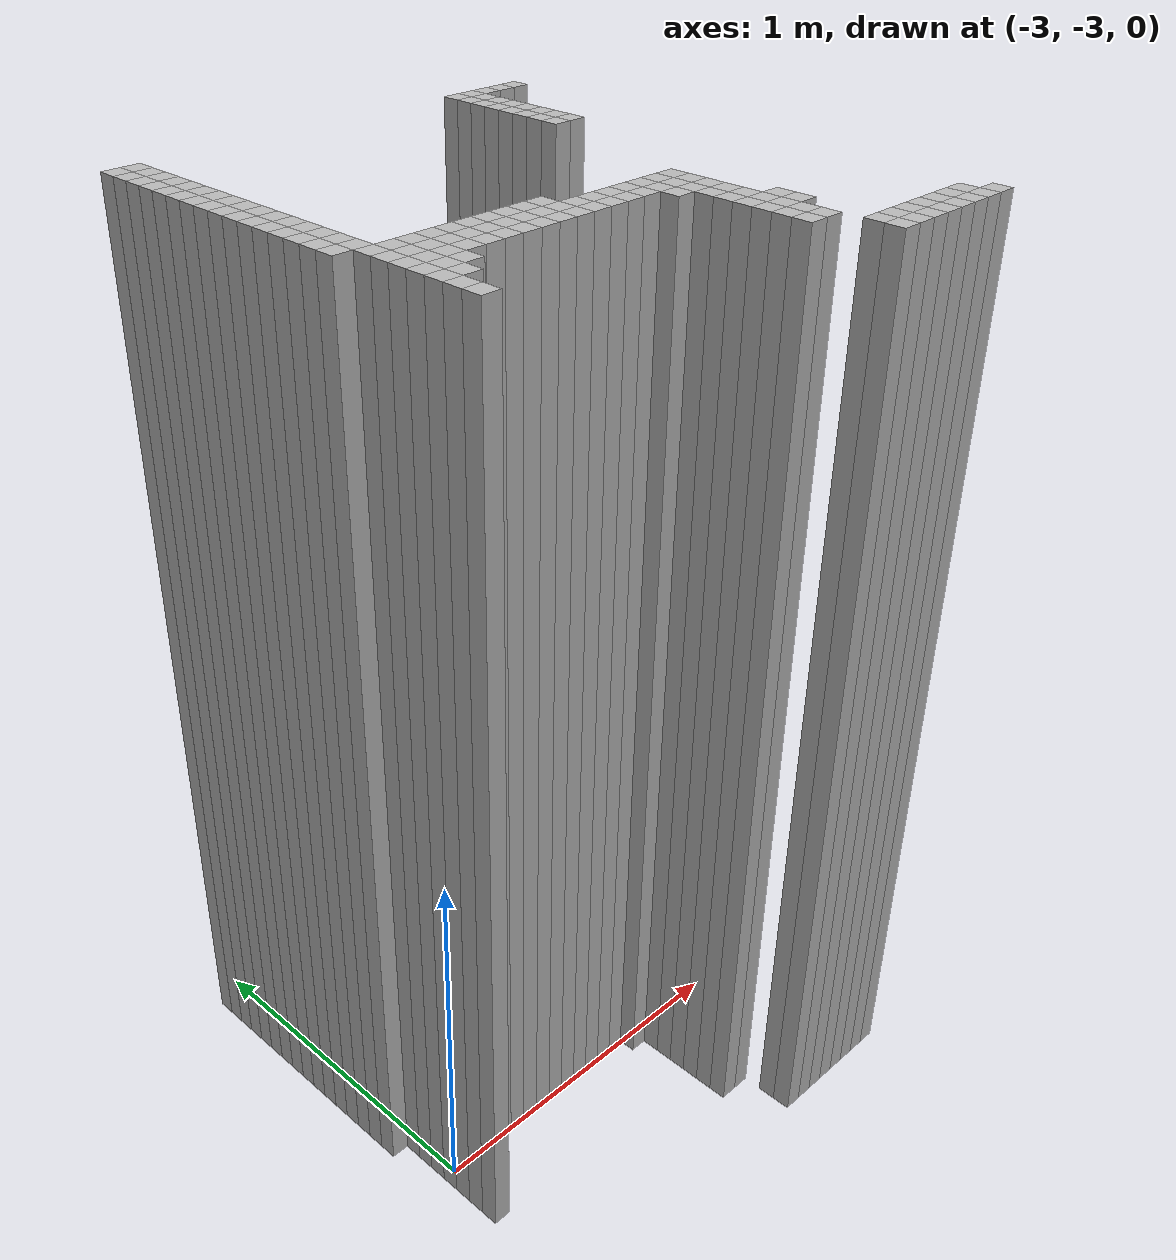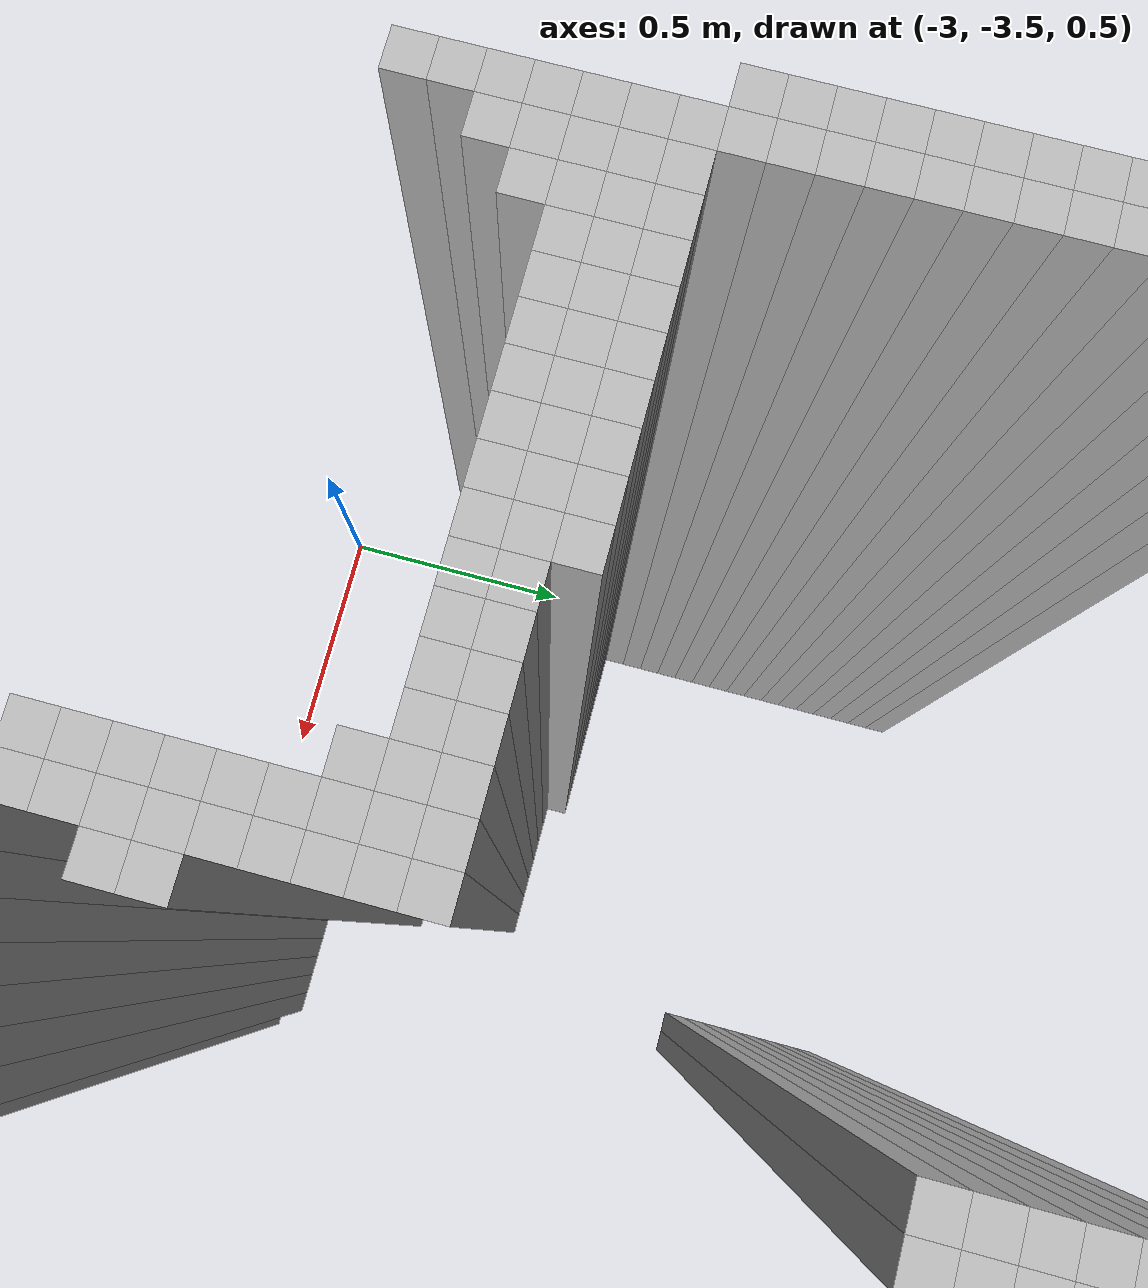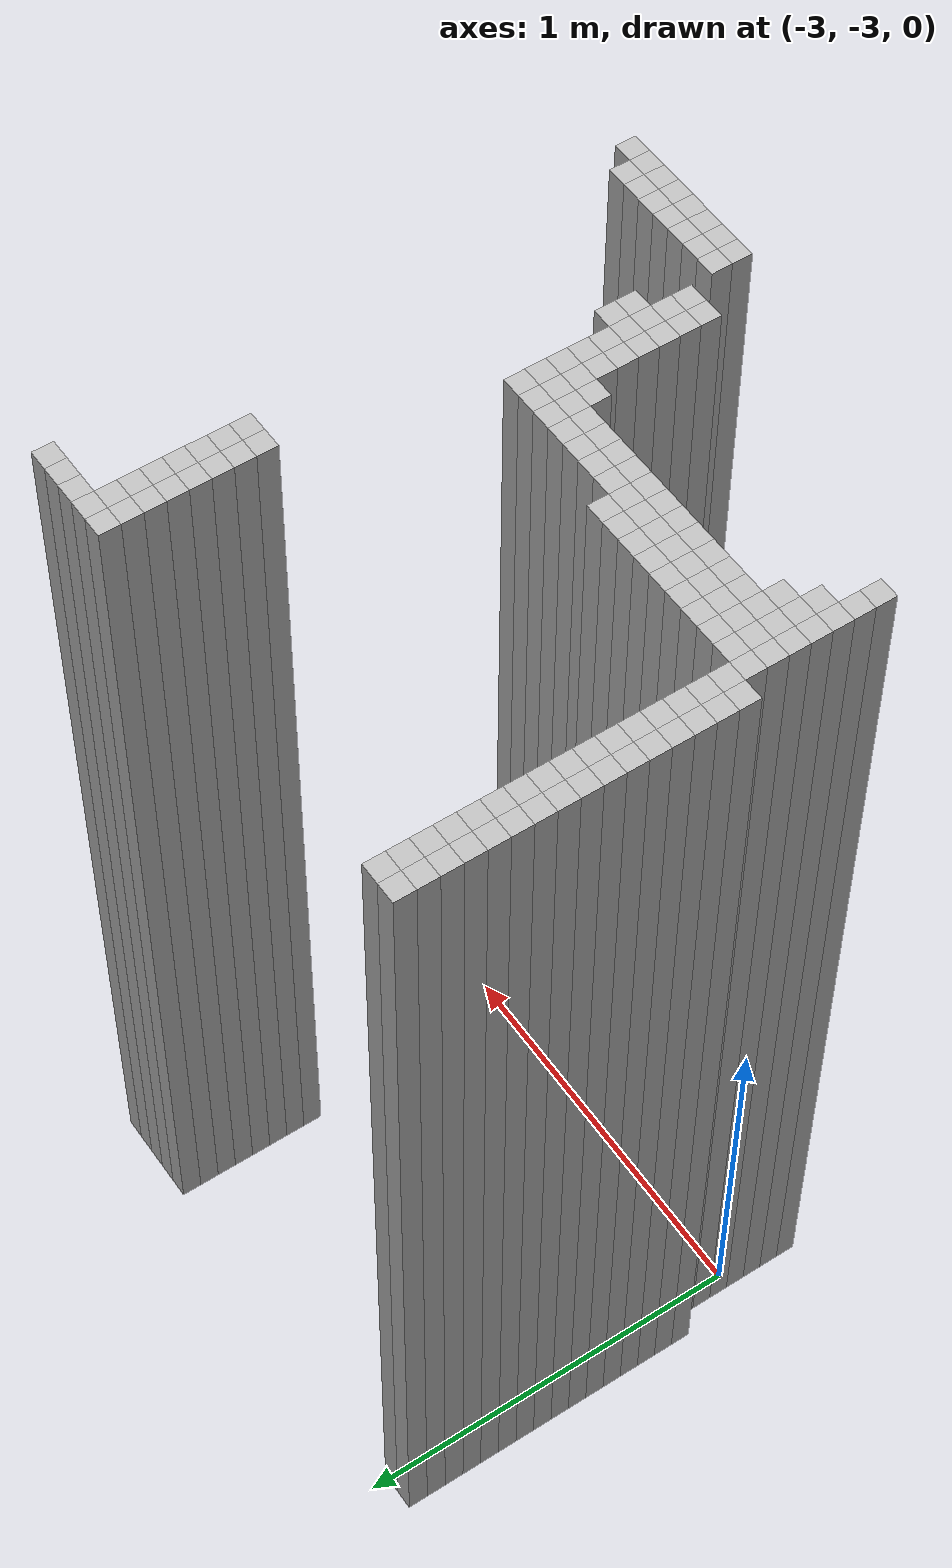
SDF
<sdf version="1.9">
 <world name="map_world">
  <model name="wall_162_195">
   <static>true</static>
   <pose>-3.061 -2.070 1.250 0 0 0</pose>
   <link name="link">
    <collision name="collision"><geometry><box><size>0.050 0.050 2.500</size></box></geometry></collision>
    <visual name="visual"><geometry><box><size>0.050 0.050 2.500</size></box></geometry></visual>
   </link>
  </model>
  <model name="wall_163_195">
   <static>true</static>
   <pose>-3.011 -2.070 1.250 0 0 0</pose>
   <link name="link">
    <collision name="collision"><geometry><box><size>0.050 0.050 2.500</size></box></geometry></collision>
    <visual name="visual"><geometry><box><size>0.050 0.050 2.500</size></box></geometry></visual>
   </link>
  </model>
  <model name="wall_182_195">
   <static>true</static>
   <pose>-2.061 -2.070 1.250 0 0 0</pose>
   <link name="link">
    <collision name="collision"><geometry><box><size>0.050 0.050 2.500</size></box></geometry></collision>
    <visual name="visual"><geometry><box><size>0.050 0.050 2.500</size></box></geometry></visual>
   </link>
  </model>
  <model name="wall_183_195">
   <static>true</static>
   <pose>-2.011 -2.070 1.250 0 0 0</pose>
   <link name="link">
    <collision name="collision"><geometry><box><size>0.050 0.050 2.500</size></box></geometry></collision>
    <visual name="visual"><geometry><box><size>0.050 0.050 2.500</size></box></geometry></visual>
   </link>
  </model>
  <model name="wall_184_195">
   <static>true</static>
   <pose>-1.961 -2.070 1.250 0 0 0</pose>
   <link name="link">
    <collision name="collision"><geometry><box><size>0.050 0.050 2.500</size></box></geometry></collision>
    <visual name="visual"><geometry><box><size>0.050 0.050 2.500</size></box></geometry></visual>
   </link>
  </model>
  <model name="wall_185_195">
   <static>true</static>
   <pose>-1.911 -2.070 1.250 0 0 0</pose>
   <link name="link">
    <collision name="collision"><geometry><box><size>0.050 0.050 2.500</size></box></geometry></collision>
    <visual name="visual"><geometry><box><size>0.050 0.050 2.500</size></box></geometry></visual>
   </link>
  </model>
  <model name="wall_186_195">
   <static>true</static>
   <pose>-1.861 -2.070 1.250 0 0 0</pose>
   <link name="link">
    <collision name="collision"><geometry><box><size>0.050 0.050 2.500</size></box></geometry></collision>
    <visual name="visual"><geometry><box><size>0.050 0.050 2.500</size></box></geometry></visual>
   </link>
  </model>
  <model name="wall_162_196">
   <static>true</static>
   <pose>-3.061 -2.120 1.250 0 0 0</pose>
   <link name="link">
    <collision name="collision"><geometry><box><size>0.050 0.050 2.500</size></box></geometry></collision>
    <visual name="visual"><geometry><box><size>0.050 0.050 2.500</size></box></geometry></visual>
   </link>
  </model>
  <model name="wall_163_196">
   <static>true</static>
   <pose>-3.011 -2.120 1.250 0 0 0</pose>
   <link name="link">
    <collision name="collision"><geometry><box><size>0.050 0.050 2.500</size></box></geometry></collision>
    <visual name="visual"><geometry><box><size>0.050 0.050 2.500</size></box></geometry></visual>
   </link>
  </model>
  <model name="wall_182_196">
   <static>true</static>
   <pose>-2.061 -2.120 1.250 0 0 0</pose>
   <link name="link">
    <collision name="collision"><geometry><box><size>0.050 0.050 2.500</size></box></geometry></collision>
    <visual name="visual"><geometry><box><size>0.050 0.050 2.500</size></box></geometry></visual>
   </link>
  </model>
  <model name="wall_183_196">
   <static>true</static>
   <pose>-2.011 -2.120 1.250 0 0 0</pose>
   <link name="link">
    <collision name="collision"><geometry><box><size>0.050 0.050 2.500</size></box></geometry></collision>
    <visual name="visual"><geometry><box><size>0.050 0.050 2.500</size></box></geometry></visual>
   </link>
  </model>
  <model name="wall_162_197">
   <static>true</static>
   <pose>-3.061 -2.170 1.250 0 0 0</pose>
   <link name="link">
    <collision name="collision"><geometry><box><size>0.050 0.050 2.500</size></box></geometry></collision>
    <visual name="visual"><geometry><box><size>0.050 0.050 2.500</size></box></geometry></visual>
   </link>
  </model>
  <model name="wall_163_197">
   <static>true</static>
   <pose>-3.011 -2.170 1.250 0 0 0</pose>
   <link name="link">
    <collision name="collision"><geometry><box><size>0.050 0.050 2.500</size></box></geometry></collision>
    <visual name="visual"><geometry><box><size>0.050 0.050 2.500</size></box></geometry></visual>
   </link>
  </model>
  <model name="wall_182_197">
   <static>true</static>
   <pose>-2.061 -2.170 1.250 0 0 0</pose>
   <link name="link">
    <collision name="collision"><geometry><box><size>0.050 0.050 2.500</size></box></geometry></collision>
    <visual name="visual"><geometry><box><size>0.050 0.050 2.500</size></box></geometry></visual>
   </link>
  </model>
  <model name="wall_183_197">
   <static>true</static>
   <pose>-2.011 -2.170 1.250 0 0 0</pose>
   <link name="link">
    <collision name="collision"><geometry><box><size>0.050 0.050 2.500</size></box></geometry></collision>
    <visual name="visual"><geometry><box><size>0.050 0.050 2.500</size></box></geometry></visual>
   </link>
  </model>
  <model name="wall_162_198">
   <static>true</static>
   <pose>-3.061 -2.220 1.250 0 0 0</pose>
   <link name="link">
    <collision name="collision"><geometry><box><size>0.050 0.050 2.500</size></box></geometry></collision>
    <visual name="visual"><geometry><box><size>0.050 0.050 2.500</size></box></geometry></visual>
   </link>
  </model>
  <model name="wall_163_198">
   <static>true</static>
   <pose>-3.011 -2.220 1.250 0 0 0</pose>
   <link name="link">
    <collision name="collision"><geometry><box><size>0.050 0.050 2.500</size></box></geometry></collision>
    <visual name="visual"><geometry><box><size>0.050 0.050 2.500</size></box></geometry></visual>
   </link>
  </model>
  <model name="wall_182_198">
   <static>true</static>
   <pose>-2.061 -2.220 1.250 0 0 0</pose>
   <link name="link">
    <collision name="collision"><geometry><box><size>0.050 0.050 2.500</size></box></geometry></collision>
    <visual name="visual"><geometry><box><size>0.050 0.050 2.500</size></box></geometry></visual>
   </link>
  </model>
  <model name="wall_183_198">
   <static>true</static>
   <pose>-2.011 -2.220 1.250 0 0 0</pose>
   <link name="link">
    <collision name="collision"><geometry><box><size>0.050 0.050 2.500</size></box></geometry></collision>
    <visual name="visual"><geometry><box><size>0.050 0.050 2.500</size></box></geometry></visual>
   </link>
  </model>
  <model name="wall_162_199">
   <static>true</static>
   <pose>-3.061 -2.270 1.250 0 0 0</pose>
   <link name="link">
    <collision name="collision"><geometry><box><size>0.050 0.050 2.500</size></box></geometry></collision>
    <visual name="visual"><geometry><box><size>0.050 0.050 2.500</size></box></geometry></visual>
   </link>
  </model>
  <model name="wall_163_199">
   <static>true</static>
   <pose>-3.011 -2.270 1.250 0 0 0</pose>
   <link name="link">
    <collision name="collision"><geometry><box><size>0.050 0.050 2.500</size></box></geometry></collision>
    <visual name="visual"><geometry><box><size>0.050 0.050 2.500</size></box></geometry></visual>
   </link>
  </model>
  <model name="wall_182_199">
   <static>true</static>
   <pose>-2.061 -2.270 1.250 0 0 0</pose>
   <link name="link">
    <collision name="collision"><geometry><box><size>0.050 0.050 2.500</size></box></geometry></collision>
    <visual name="visual"><geometry><box><size>0.050 0.050 2.500</size></box></geometry></visual>
   </link>
  </model>
  <model name="wall_183_199">
   <static>true</static>
   <pose>-2.011 -2.270 1.250 0 0 0</pose>
   <link name="link">
    <collision name="collision"><geometry><box><size>0.050 0.050 2.500</size></box></geometry></collision>
    <visual name="visual"><geometry><box><size>0.050 0.050 2.500</size></box></geometry></visual>
   </link>
  </model>
  <model name="wall_162_200">
   <static>true</static>
   <pose>-3.061 -2.320 1.250 0 0 0</pose>
   <link name="link">
    <collision name="collision"><geometry><box><size>0.050 0.050 2.500</size></box></geometry></collision>
    <visual name="visual"><geometry><box><size>0.050 0.050 2.500</size></box></geometry></visual>
   </link>
  </model>
  <model name="wall_163_200">
   <static>true</static>
   <pose>-3.011 -2.320 1.250 0 0 0</pose>
   <link name="link">
    <collision name="collision"><geometry><box><size>0.050 0.050 2.500</size></box></geometry></collision>
    <visual name="visual"><geometry><box><size>0.050 0.050 2.500</size></box></geometry></visual>
   </link>
  </model>
  <model name="wall_182_200">
   <static>true</static>
   <pose>-2.061 -2.320 1.250 0 0 0</pose>
   <link name="link">
    <collision name="collision"><geometry><box><size>0.050 0.050 2.500</size></box></geometry></collision>
    <visual name="visual"><geometry><box><size>0.050 0.050 2.500</size></box></geometry></visual>
   </link>
  </model>
  <model name="wall_183_200">
   <static>true</static>
   <pose>-2.011 -2.320 1.250 0 0 0</pose>
   <link name="link">
    <collision name="collision"><geometry><box><size>0.050 0.050 2.500</size></box></geometry></collision>
    <visual name="visual"><geometry><box><size>0.050 0.050 2.500</size></box></geometry></visual>
   </link>
  </model>
  <model name="wall_162_201">
   <static>true</static>
   <pose>-3.061 -2.370 1.250 0 0 0</pose>
   <link name="link">
    <collision name="collision"><geometry><box><size>0.050 0.050 2.500</size></box></geometry></collision>
    <visual name="visual"><geometry><box><size>0.050 0.050 2.500</size></box></geometry></visual>
   </link>
  </model>
  <model name="wall_163_201">
   <static>true</static>
   <pose>-3.011 -2.370 1.250 0 0 0</pose>
   <link name="link">
    <collision name="collision"><geometry><box><size>0.050 0.050 2.500</size></box></geometry></collision>
    <visual name="visual"><geometry><box><size>0.050 0.050 2.500</size></box></geometry></visual>
   </link>
  </model>
  <model name="wall_182_201">
   <static>true</static>
   <pose>-2.061 -2.370 1.250 0 0 0</pose>
   <link name="link">
    <collision name="collision"><geometry><box><size>0.050 0.050 2.500</size></box></geometry></collision>
    <visual name="visual"><geometry><box><size>0.050 0.050 2.500</size></box></geometry></visual>
   </link>
  </model>
  <model name="wall_183_201">
   <static>true</static>
   <pose>-2.011 -2.370 1.250 0 0 0</pose>
   <link name="link">
    <collision name="collision"><geometry><box><size>0.050 0.050 2.500</size></box></geometry></collision>
    <visual name="visual"><geometry><box><size>0.050 0.050 2.500</size></box></geometry></visual>
   </link>
  </model>
  <model name="wall_162_202">
   <static>true</static>
   <pose>-3.061 -2.420 1.250 0 0 0</pose>
   <link name="link">
    <collision name="collision"><geometry><box><size>0.050 0.050 2.500</size></box></geometry></collision>
    <visual name="visual"><geometry><box><size>0.050 0.050 2.500</size></box></geometry></visual>
   </link>
  </model>
  <model name="wall_163_202">
   <static>true</static>
   <pose>-3.011 -2.420 1.250 0 0 0</pose>
   <link name="link">
    <collision name="collision"><geometry><box><size>0.050 0.050 2.500</size></box></geometry></collision>
    <visual name="visual"><geometry><box><size>0.050 0.050 2.500</size></box></geometry></visual>
   </link>
  </model>
  <model name="wall_182_202">
   <static>true</static>
   <pose>-2.061 -2.420 1.250 0 0 0</pose>
   <link name="link">
    <collision name="collision"><geometry><box><size>0.050 0.050 2.500</size></box></geometry></collision>
    <visual name="visual"><geometry><box><size>0.050 0.050 2.500</size></box></geometry></visual>
   </link>
  </model>
  <model name="wall_183_202">
   <static>true</static>
   <pose>-2.011 -2.420 1.250 0 0 0</pose>
   <link name="link">
    <collision name="collision"><geometry><box><size>0.050 0.050 2.500</size></box></geometry></collision>
    <visual name="visual"><geometry><box><size>0.050 0.050 2.500</size></box></geometry></visual>
   </link>
  </model>
  <model name="wall_162_203">
   <static>true</static>
   <pose>-3.061 -2.470 1.250 0 0 0</pose>
   <link name="link">
    <collision name="collision"><geometry><box><size>0.050 0.050 2.500</size></box></geometry></collision>
    <visual name="visual"><geometry><box><size>0.050 0.050 2.500</size></box></geometry></visual>
   </link>
  </model>
  <model name="wall_163_203">
   <static>true</static>
   <pose>-3.011 -2.470 1.250 0 0 0</pose>
   <link name="link">
    <collision name="collision"><geometry><box><size>0.050 0.050 2.500</size></box></geometry></collision>
    <visual name="visual"><geometry><box><size>0.050 0.050 2.500</size></box></geometry></visual>
   </link>
  </model>
  <model name="wall_162_204">
   <static>true</static>
   <pose>-3.061 -2.520 1.250 0 0 0</pose>
   <link name="link">
    <collision name="collision"><geometry><box><size>0.050 0.050 2.500</size></box></geometry></collision>
    <visual name="visual"><geometry><box><size>0.050 0.050 2.500</size></box></geometry></visual>
   </link>
  </model>
  <model name="wall_163_204">
   <static>true</static>
   <pose>-3.011 -2.520 1.250 0 0 0</pose>
   <link name="link">
    <collision name="collision"><geometry><box><size>0.050 0.050 2.500</size></box></geometry></collision>
    <visual name="visual"><geometry><box><size>0.050 0.050 2.500</size></box></geometry></visual>
   </link>
  </model>
  <model name="wall_162_205">
   <static>true</static>
   <pose>-3.061 -2.570 1.250 0 0 0</pose>
   <link name="link">
    <collision name="collision"><geometry><box><size>0.050 0.050 2.500</size></box></geometry></collision>
    <visual name="visual"><geometry><box><size>0.050 0.050 2.500</size></box></geometry></visual>
   </link>
  </model>
  <model name="wall_163_205">
   <static>true</static>
   <pose>-3.011 -2.570 1.250 0 0 0</pose>
   <link name="link">
    <collision name="collision"><geometry><box><size>0.050 0.050 2.500</size></box></geometry></collision>
    <visual name="visual"><geometry><box><size>0.050 0.050 2.500</size></box></geometry></visual>
   </link>
  </model>
  <model name="wall_162_206">
   <static>true</static>
   <pose>-3.061 -2.620 1.250 0 0 0</pose>
   <link name="link">
    <collision name="collision"><geometry><box><size>0.050 0.050 2.500</size></box></geometry></collision>
    <visual name="visual"><geometry><box><size>0.050 0.050 2.500</size></box></geometry></visual>
   </link>
  </model>
  <model name="wall_163_206">
   <static>true</static>
   <pose>-3.011 -2.620 1.250 0 0 0</pose>
   <link name="link">
    <collision name="collision"><geometry><box><size>0.050 0.050 2.500</size></box></geometry></collision>
    <visual name="visual"><geometry><box><size>0.050 0.050 2.500</size></box></geometry></visual>
   </link>
  </model>
  <model name="wall_162_207">
   <static>true</static>
   <pose>-3.061 -2.670 1.250 0 0 0</pose>
   <link name="link">
    <collision name="collision"><geometry><box><size>0.050 0.050 2.500</size></box></geometry></collision>
    <visual name="visual"><geometry><box><size>0.050 0.050 2.500</size></box></geometry></visual>
   </link>
  </model>
  <model name="wall_163_207">
   <static>true</static>
   <pose>-3.011 -2.670 1.250 0 0 0</pose>
   <link name="link">
    <collision name="collision"><geometry><box><size>0.050 0.050 2.500</size></box></geometry></collision>
    <visual name="visual"><geometry><box><size>0.050 0.050 2.500</size></box></geometry></visual>
   </link>
  </model>
  <model name="wall_162_208">
   <static>true</static>
   <pose>-3.061 -2.720 1.250 0 0 0</pose>
   <link name="link">
    <collision name="collision"><geometry><box><size>0.050 0.050 2.500</size></box></geometry></collision>
    <visual name="visual"><geometry><box><size>0.050 0.050 2.500</size></box></geometry></visual>
   </link>
  </model>
  <model name="wall_163_208">
   <static>true</static>
   <pose>-3.011 -2.720 1.250 0 0 0</pose>
   <link name="link">
    <collision name="collision"><geometry><box><size>0.050 0.050 2.500</size></box></geometry></collision>
    <visual name="visual"><geometry><box><size>0.050 0.050 2.500</size></box></geometry></visual>
   </link>
  </model>
  <model name="wall_162_209">
   <static>true</static>
   <pose>-3.061 -2.770 1.250 0 0 0</pose>
   <link name="link">
    <collision name="collision"><geometry><box><size>0.050 0.050 2.500</size></box></geometry></collision>
    <visual name="visual"><geometry><box><size>0.050 0.050 2.500</size></box></geometry></visual>
   </link>
  </model>
  <model name="wall_163_209">
   <static>true</static>
   <pose>-3.011 -2.770 1.250 0 0 0</pose>
   <link name="link">
    <collision name="collision"><geometry><box><size>0.050 0.050 2.500</size></box></geometry></collision>
    <visual name="visual"><geometry><box><size>0.050 0.050 2.500</size></box></geometry></visual>
   </link>
  </model>
  <model name="wall_162_210">
   <static>true</static>
   <pose>-3.061 -2.820 1.250 0 0 0</pose>
   <link name="link">
    <collision name="collision"><geometry><box><size>0.050 0.050 2.500</size></box></geometry></collision>
    <visual name="visual"><geometry><box><size>0.050 0.050 2.500</size></box></geometry></visual>
   </link>
  </model>
  <model name="wall_163_210">
   <static>true</static>
   <pose>-3.011 -2.820 1.250 0 0 0</pose>
   <link name="link">
    <collision name="collision"><geometry><box><size>0.050 0.050 2.500</size></box></geometry></collision>
    <visual name="visual"><geometry><box><size>0.050 0.050 2.500</size></box></geometry></visual>
   </link>
  </model>
  <model name="wall_163_211">
   <static>true</static>
   <pose>-3.011 -2.870 1.250 0 0 0</pose>
   <link name="link">
    <collision name="collision"><geometry><box><size>0.050 0.050 2.500</size></box></geometry></collision>
    <visual name="visual"><geometry><box><size>0.050 0.050 2.500</size></box></geometry></visual>
   </link>
  </model>
  <model name="wall_164_211">
   <static>true</static>
   <pose>-2.961 -2.870 1.250 0 0 0</pose>
   <link name="link">
    <collision name="collision"><geometry><box><size>0.050 0.050 2.500</size></box></geometry></collision>
    <visual name="visual"><geometry><box><size>0.050 0.050 2.500</size></box></geometry></visual>
   </link>
  </model>
  <model name="wall_165_211">
   <static>true</static>
   <pose>-2.911 -2.870 1.250 0 0 0</pose>
   <link name="link">
    <collision name="collision"><geometry><box><size>0.050 0.050 2.500</size></box></geometry></collision>
    <visual name="visual"><geometry><box><size>0.050 0.050 2.500</size></box></geometry></visual>
   </link>
  </model>
  <model name="wall_166_211">
   <static>true</static>
   <pose>-2.861 -2.870 1.250 0 0 0</pose>
   <link name="link">
    <collision name="collision"><geometry><box><size>0.050 0.050 2.500</size></box></geometry></collision>
    <visual name="visual"><geometry><box><size>0.050 0.050 2.500</size></box></geometry></visual>
   </link>
  </model>
  <model name="wall_167_211">
   <static>true</static>
   <pose>-2.811 -2.870 1.250 0 0 0</pose>
   <link name="link">
    <collision name="collision"><geometry><box><size>0.050 0.050 2.500</size></box></geometry></collision>
    <visual name="visual"><geometry><box><size>0.050 0.050 2.500</size></box></geometry></visual>
   </link>
  </model>
  <model name="wall_168_211">
   <static>true</static>
   <pose>-2.761 -2.870 1.250 0 0 0</pose>
   <link name="link">
    <collision name="collision"><geometry><box><size>0.050 0.050 2.500</size></box></geometry></collision>
    <visual name="visual"><geometry><box><size>0.050 0.050 2.500</size></box></geometry></visual>
   </link>
  </model>
  <model name="wall_169_211">
   <static>true</static>
   <pose>-2.711 -2.870 1.250 0 0 0</pose>
   <link name="link">
    <collision name="collision"><geometry><box><size>0.050 0.050 2.500</size></box></geometry></collision>
    <visual name="visual"><geometry><box><size>0.050 0.050 2.500</size></box></geometry></visual>
   </link>
  </model>
  <model name="wall_170_211">
   <static>true</static>
   <pose>-2.661 -2.870 1.250 0 0 0</pose>
   <link name="link">
    <collision name="collision"><geometry><box><size>0.050 0.050 2.500</size></box></geometry></collision>
    <visual name="visual"><geometry><box><size>0.050 0.050 2.500</size></box></geometry></visual>
   </link>
  </model>
  <model name="wall_171_211">
   <static>true</static>
   <pose>-2.611 -2.870 1.250 0 0 0</pose>
   <link name="link">
    <collision name="collision"><geometry><box><size>0.050 0.050 2.500</size></box></geometry></collision>
    <visual name="visual"><geometry><box><size>0.050 0.050 2.500</size></box></geometry></visual>
   </link>
  </model>
  <model name="wall_172_211">
   <static>true</static>
   <pose>-2.561 -2.870 1.250 0 0 0</pose>
   <link name="link">
    <collision name="collision"><geometry><box><size>0.050 0.050 2.500</size></box></geometry></collision>
    <visual name="visual"><geometry><box><size>0.050 0.050 2.500</size></box></geometry></visual>
   </link>
  </model>
  <model name="wall_163_212">
   <static>true</static>
   <pose>-3.011 -2.920 1.250 0 0 0</pose>
   <link name="link">
    <collision name="collision"><geometry><box><size>0.050 0.050 2.500</size></box></geometry></collision>
    <visual name="visual"><geometry><box><size>0.050 0.050 2.500</size></box></geometry></visual>
   </link>
  </model>
  <model name="wall_164_212">
   <static>true</static>
   <pose>-2.961 -2.920 1.250 0 0 0</pose>
   <link name="link">
    <collision name="collision"><geometry><box><size>0.050 0.050 2.500</size></box></geometry></collision>
    <visual name="visual"><geometry><box><size>0.050 0.050 2.500</size></box></geometry></visual>
   </link>
  </model>
  <model name="wall_165_212">
   <static>true</static>
   <pose>-2.911 -2.920 1.250 0 0 0</pose>
   <link name="link">
    <collision name="collision"><geometry><box><size>0.050 0.050 2.500</size></box></geometry></collision>
    <visual name="visual"><geometry><box><size>0.050 0.050 2.500</size></box></geometry></visual>
   </link>
  </model>
  <model name="wall_166_212">
   <static>true</static>
   <pose>-2.861 -2.920 1.250 0 0 0</pose>
   <link name="link">
    <collision name="collision"><geometry><box><size>0.050 0.050 2.500</size></box></geometry></collision>
    <visual name="visual"><geometry><box><size>0.050 0.050 2.500</size></box></geometry></visual>
   </link>
  </model>
  <model name="wall_167_212">
   <static>true</static>
   <pose>-2.811 -2.920 1.250 0 0 0</pose>
   <link name="link">
    <collision name="collision"><geometry><box><size>0.050 0.050 2.500</size></box></geometry></collision>
    <visual name="visual"><geometry><box><size>0.050 0.050 2.500</size></box></geometry></visual>
   </link>
  </model>
  <model name="wall_168_212">
   <static>true</static>
   <pose>-2.761 -2.920 1.250 0 0 0</pose>
   <link name="link">
    <collision name="collision"><geometry><box><size>0.050 0.050 2.500</size></box></geometry></collision>
    <visual name="visual"><geometry><box><size>0.050 0.050 2.500</size></box></geometry></visual>
   </link>
  </model>
  <model name="wall_169_212">
   <static>true</static>
   <pose>-2.711 -2.920 1.250 0 0 0</pose>
   <link name="link">
    <collision name="collision"><geometry><box><size>0.050 0.050 2.500</size></box></geometry></collision>
    <visual name="visual"><geometry><box><size>0.050 0.050 2.500</size></box></geometry></visual>
   </link>
  </model>
  <model name="wall_170_212">
   <static>true</static>
   <pose>-2.661 -2.920 1.250 0 0 0</pose>
   <link name="link">
    <collision name="collision"><geometry><box><size>0.050 0.050 2.500</size></box></geometry></collision>
    <visual name="visual"><geometry><box><size>0.050 0.050 2.500</size></box></geometry></visual>
   </link>
  </model>
  <model name="wall_171_212">
   <static>true</static>
   <pose>-2.611 -2.920 1.250 0 0 0</pose>
   <link name="link">
    <collision name="collision"><geometry><box><size>0.050 0.050 2.500</size></box></geometry></collision>
    <visual name="visual"><geometry><box><size>0.050 0.050 2.500</size></box></geometry></visual>
   </link>
  </model>
  <model name="wall_172_212">
   <static>true</static>
   <pose>-2.561 -2.920 1.250 0 0 0</pose>
   <link name="link">
    <collision name="collision"><geometry><box><size>0.050 0.050 2.500</size></box></geometry></collision>
    <visual name="visual"><geometry><box><size>0.050 0.050 2.500</size></box></geometry></visual>
   </link>
  </model>
  <model name="wall_173_212">
   <static>true</static>
   <pose>-2.511 -2.920 1.250 0 0 0</pose>
   <link name="link">
    <collision name="collision"><geometry><box><size>0.050 0.050 2.500</size></box></geometry></collision>
    <visual name="visual"><geometry><box><size>0.050 0.050 2.500</size></box></geometry></visual>
   </link>
  </model>
  <model name="wall_174_212">
   <static>true</static>
   <pose>-2.461 -2.920 1.250 0 0 0</pose>
   <link name="link">
    <collision name="collision"><geometry><box><size>0.050 0.050 2.500</size></box></geometry></collision>
    <visual name="visual"><geometry><box><size>0.050 0.050 2.500</size></box></geometry></visual>
   </link>
  </model>
  <model name="wall_175_212">
   <static>true</static>
   <pose>-2.411 -2.920 1.250 0 0 0</pose>
   <link name="link">
    <collision name="collision"><geometry><box><size>0.050 0.050 2.500</size></box></geometry></collision>
    <visual name="visual"><geometry><box><size>0.050 0.050 2.500</size></box></geometry></visual>
   </link>
  </model>
  <model name="wall_176_212">
   <static>true</static>
   <pose>-2.361 -2.920 1.250 0 0 0</pose>
   <link name="link">
    <collision name="collision"><geometry><box><size>0.050 0.050 2.500</size></box></geometry></collision>
    <visual name="visual"><geometry><box><size>0.050 0.050 2.500</size></box></geometry></visual>
   </link>
  </model>
  <model name="wall_177_212">
   <static>true</static>
   <pose>-2.311 -2.920 1.250 0 0 0</pose>
   <link name="link">
    <collision name="collision"><geometry><box><size>0.050 0.050 2.500</size></box></geometry></collision>
    <visual name="visual"><geometry><box><size>0.050 0.050 2.500</size></box></geometry></visual>
   </link>
  </model>
  <model name="wall_178_212">
   <static>true</static>
   <pose>-2.261 -2.920 1.250 0 0 0</pose>
   <link name="link">
    <collision name="collision"><geometry><box><size>0.050 0.050 2.500</size></box></geometry></collision>
    <visual name="visual"><geometry><box><size>0.050 0.050 2.500</size></box></geometry></visual>
   </link>
  </model>
  <model name="wall_179_212">
   <static>true</static>
   <pose>-2.211 -2.920 1.250 0 0 0</pose>
   <link name="link">
    <collision name="collision"><geometry><box><size>0.050 0.050 2.500</size></box></geometry></collision>
    <visual name="visual"><geometry><box><size>0.050 0.050 2.500</size></box></geometry></visual>
   </link>
  </model>
  <model name="wall_163_213">
   <static>true</static>
   <pose>-3.011 -2.970 1.250 0 0 0</pose>
   <link name="link">
    <collision name="collision"><geometry><box><size>0.050 0.050 2.500</size></box></geometry></collision>
    <visual name="visual"><geometry><box><size>0.050 0.050 2.500</size></box></geometry></visual>
   </link>
  </model>
  <model name="wall_164_213">
   <static>true</static>
   <pose>-2.961 -2.970 1.250 0 0 0</pose>
   <link name="link">
    <collision name="collision"><geometry><box><size>0.050 0.050 2.500</size></box></geometry></collision>
    <visual name="visual"><geometry><box><size>0.050 0.050 2.500</size></box></geometry></visual>
   </link>
  </model>
  <model name="wall_165_213">
   <static>true</static>
   <pose>-2.911 -2.970 1.250 0 0 0</pose>
   <link name="link">
    <collision name="collision"><geometry><box><size>0.050 0.050 2.500</size></box></geometry></collision>
    <visual name="visual"><geometry><box><size>0.050 0.050 2.500</size></box></geometry></visual>
   </link>
  </model>
  <model name="wall_166_213">
   <static>true</static>
   <pose>-2.861 -2.970 1.250 0 0 0</pose>
   <link name="link">
    <collision name="collision"><geometry><box><size>0.050 0.050 2.500</size></box></geometry></collision>
    <visual name="visual"><geometry><box><size>0.050 0.050 2.500</size></box></geometry></visual>
   </link>
  </model>
  <model name="wall_167_213">
   <static>true</static>
   <pose>-2.811 -2.970 1.250 0 0 0</pose>
   <link name="link">
    <collision name="collision"><geometry><box><size>0.050 0.050 2.500</size></box></geometry></collision>
    <visual name="visual"><geometry><box><size>0.050 0.050 2.500</size></box></geometry></visual>
   </link>
  </model>
  <model name="wall_168_213">
   <static>true</static>
   <pose>-2.761 -2.970 1.250 0 0 0</pose>
   <link name="link">
    <collision name="collision"><geometry><box><size>0.050 0.050 2.500</size></box></geometry></collision>
    <visual name="visual"><geometry><box><size>0.050 0.050 2.500</size></box></geometry></visual>
   </link>
  </model>
  <model name="wall_169_213">
   <static>true</static>
   <pose>-2.711 -2.970 1.250 0 0 0</pose>
   <link name="link">
    <collision name="collision"><geometry><box><size>0.050 0.050 2.500</size></box></geometry></collision>
    <visual name="visual"><geometry><box><size>0.050 0.050 2.500</size></box></geometry></visual>
   </link>
  </model>
  <model name="wall_170_213">
   <static>true</static>
   <pose>-2.661 -2.970 1.250 0 0 0</pose>
   <link name="link">
    <collision name="collision"><geometry><box><size>0.050 0.050 2.500</size></box></geometry></collision>
    <visual name="visual"><geometry><box><size>0.050 0.050 2.500</size></box></geometry></visual>
   </link>
  </model>
  <model name="wall_171_213">
   <static>true</static>
   <pose>-2.611 -2.970 1.250 0 0 0</pose>
   <link name="link">
    <collision name="collision"><geometry><box><size>0.050 0.050 2.500</size></box></geometry></collision>
    <visual name="visual"><geometry><box><size>0.050 0.050 2.500</size></box></geometry></visual>
   </link>
  </model>
  <model name="wall_172_213">
   <static>true</static>
   <pose>-2.561 -2.970 1.250 0 0 0</pose>
   <link name="link">
    <collision name="collision"><geometry><box><size>0.050 0.050 2.500</size></box></geometry></collision>
    <visual name="visual"><geometry><box><size>0.050 0.050 2.500</size></box></geometry></visual>
   </link>
  </model>
  <model name="wall_173_213">
   <static>true</static>
   <pose>-2.511 -2.970 1.250 0 0 0</pose>
   <link name="link">
    <collision name="collision"><geometry><box><size>0.050 0.050 2.500</size></box></geometry></collision>
    <visual name="visual"><geometry><box><size>0.050 0.050 2.500</size></box></geometry></visual>
   </link>
  </model>
  <model name="wall_174_213">
   <static>true</static>
   <pose>-2.461 -2.970 1.250 0 0 0</pose>
   <link name="link">
    <collision name="collision"><geometry><box><size>0.050 0.050 2.500</size></box></geometry></collision>
    <visual name="visual"><geometry><box><size>0.050 0.050 2.500</size></box></geometry></visual>
   </link>
  </model>
  <model name="wall_175_213">
   <static>true</static>
   <pose>-2.411 -2.970 1.250 0 0 0</pose>
   <link name="link">
    <collision name="collision"><geometry><box><size>0.050 0.050 2.500</size></box></geometry></collision>
    <visual name="visual"><geometry><box><size>0.050 0.050 2.500</size></box></geometry></visual>
   </link>
  </model>
  <model name="wall_176_213">
   <static>true</static>
   <pose>-2.361 -2.970 1.250 0 0 0</pose>
   <link name="link">
    <collision name="collision"><geometry><box><size>0.050 0.050 2.500</size></box></geometry></collision>
    <visual name="visual"><geometry><box><size>0.050 0.050 2.500</size></box></geometry></visual>
   </link>
  </model>
  <model name="wall_177_213">
   <static>true</static>
   <pose>-2.311 -2.970 1.250 0 0 0</pose>
   <link name="link">
    <collision name="collision"><geometry><box><size>0.050 0.050 2.500</size></box></geometry></collision>
    <visual name="visual"><geometry><box><size>0.050 0.050 2.500</size></box></geometry></visual>
   </link>
  </model>
  <model name="wall_178_213">
   <static>true</static>
   <pose>-2.261 -2.970 1.250 0 0 0</pose>
   <link name="link">
    <collision name="collision"><geometry><box><size>0.050 0.050 2.500</size></box></geometry></collision>
    <visual name="visual"><geometry><box><size>0.050 0.050 2.500</size></box></geometry></visual>
   </link>
  </model>
  <model name="wall_179_213">
   <static>true</static>
   <pose>-2.211 -2.970 1.250 0 0 0</pose>
   <link name="link">
    <collision name="collision"><geometry><box><size>0.050 0.050 2.500</size></box></geometry></collision>
    <visual name="visual"><geometry><box><size>0.050 0.050 2.500</size></box></geometry></visual>
   </link>
  </model>
  <model name="wall_163_214">
   <static>true</static>
   <pose>-3.011 -3.020 1.250 0 0 0</pose>
   <link name="link">
    <collision name="collision"><geometry><box><size>0.050 0.050 2.500</size></box></geometry></collision>
    <visual name="visual"><geometry><box><size>0.050 0.050 2.500</size></box></geometry></visual>
   </link>
  </model>
  <model name="wall_164_214">
   <static>true</static>
   <pose>-2.961 -3.020 1.250 0 0 0</pose>
   <link name="link">
    <collision name="collision"><geometry><box><size>0.050 0.050 2.500</size></box></geometry></collision>
    <visual name="visual"><geometry><box><size>0.050 0.050 2.500</size></box></geometry></visual>
   </link>
  </model>
  <model name="wall_165_214">
   <static>true</static>
   <pose>-2.911 -3.020 1.250 0 0 0</pose>
   <link name="link">
    <collision name="collision"><geometry><box><size>0.050 0.050 2.500</size></box></geometry></collision>
    <visual name="visual"><geometry><box><size>0.050 0.050 2.500</size></box></geometry></visual>
   </link>
  </model>
  <model name="wall_177_214">
   <static>true</static>
   <pose>-2.311 -3.020 1.250 0 0 0</pose>
   <link name="link">
    <collision name="collision"><geometry><box><size>0.050 0.050 2.500</size></box></geometry></collision>
    <visual name="visual"><geometry><box><size>0.050 0.050 2.500</size></box></geometry></visual>
   </link>
  </model>
  <model name="wall_178_214">
   <static>true</static>
   <pose>-2.261 -3.020 1.250 0 0 0</pose>
   <link name="link">
    <collision name="collision"><geometry><box><size>0.050 0.050 2.500</size></box></geometry></collision>
    <visual name="visual"><geometry><box><size>0.050 0.050 2.500</size></box></geometry></visual>
   </link>
  </model>
  <model name="wall_179_214">
   <static>true</static>
   <pose>-2.211 -3.020 1.250 0 0 0</pose>
   <link name="link">
    <collision name="collision"><geometry><box><size>0.050 0.050 2.500</size></box></geometry></collision>
    <visual name="visual"><geometry><box><size>0.050 0.050 2.500</size></box></geometry></visual>
   </link>
  </model>
  <model name="wall_163_215">
   <static>true</static>
   <pose>-3.011 -3.070 1.250 0 0 0</pose>
   <link name="link">
    <collision name="collision"><geometry><box><size>0.050 0.050 2.500</size></box></geometry></collision>
    <visual name="visual"><geometry><box><size>0.050 0.050 2.500</size></box></geometry></visual>
   </link>
  </model>
  <model name="wall_164_215">
   <static>true</static>
   <pose>-2.961 -3.070 1.250 0 0 0</pose>
   <link name="link">
    <collision name="collision"><geometry><box><size>0.050 0.050 2.500</size></box></geometry></collision>
    <visual name="visual"><geometry><box><size>0.050 0.050 2.500</size></box></geometry></visual>
   </link>
  </model>
  <model name="wall_178_215">
   <static>true</static>
   <pose>-2.261 -3.070 1.250 0 0 0</pose>
   <link name="link">
    <collision name="collision"><geometry><box><size>0.050 0.050 2.500</size></box></geometry></collision>
    <visual name="visual"><geometry><box><size>0.050 0.050 2.500</size></box></geometry></visual>
   </link>
  </model>
  <model name="wall_179_215">
   <static>true</static>
   <pose>-2.211 -3.070 1.250 0 0 0</pose>
   <link name="link">
    <collision name="collision"><geometry><box><size>0.050 0.050 2.500</size></box></geometry></collision>
    <visual name="visual"><geometry><box><size>0.050 0.050 2.500</size></box></geometry></visual>
   </link>
  </model>
  <model name="wall_163_216">
   <static>true</static>
   <pose>-3.011 -3.120 1.250 0 0 0</pose>
   <link name="link">
    <collision name="collision"><geometry><box><size>0.050 0.050 2.500</size></box></geometry></collision>
    <visual name="visual"><geometry><box><size>0.050 0.050 2.500</size></box></geometry></visual>
   </link>
  </model>
  <model name="wall_178_216">
   <static>true</static>
   <pose>-2.261 -3.120 1.250 0 0 0</pose>
   <link name="link">
    <collision name="collision"><geometry><box><size>0.050 0.050 2.500</size></box></geometry></collision>
    <visual name="visual"><geometry><box><size>0.050 0.050 2.500</size></box></geometry></visual>
   </link>
  </model>
  <model name="wall_179_216">
   <static>true</static>
   <pose>-2.211 -3.120 1.250 0 0 0</pose>
   <link name="link">
    <collision name="collision"><geometry><box><size>0.050 0.050 2.500</size></box></geometry></collision>
    <visual name="visual"><geometry><box><size>0.050 0.050 2.500</size></box></geometry></visual>
   </link>
  </model>
  <model name="wall_163_217">
   <static>true</static>
   <pose>-3.011 -3.170 1.250 0 0 0</pose>
   <link name="link">
    <collision name="collision"><geometry><box><size>0.050 0.050 2.500</size></box></geometry></collision>
    <visual name="visual"><geometry><box><size>0.050 0.050 2.500</size></box></geometry></visual>
   </link>
  </model>
  <model name="wall_178_217">
   <static>true</static>
   <pose>-2.261 -3.170 1.250 0 0 0</pose>
   <link name="link">
    <collision name="collision"><geometry><box><size>0.050 0.050 2.500</size></box></geometry></collision>
    <visual name="visual"><geometry><box><size>0.050 0.050 2.500</size></box></geometry></visual>
   </link>
  </model>
  <model name="wall_179_217">
   <static>true</static>
   <pose>-2.211 -3.170 1.250 0 0 0</pose>
   <link name="link">
    <collision name="collision"><geometry><box><size>0.050 0.050 2.500</size></box></geometry></collision>
    <visual name="visual"><geometry><box><size>0.050 0.050 2.500</size></box></geometry></visual>
   </link>
  </model>
  <model name="wall_180_217">
   <static>true</static>
   <pose>-2.161 -3.170 1.250 0 0 0</pose>
   <link name="link">
    <collision name="collision"><geometry><box><size>0.050 0.050 2.500</size></box></geometry></collision>
    <visual name="visual"><geometry><box><size>0.050 0.050 2.500</size></box></geometry></visual>
   </link>
  </model>
  <model name="wall_178_218">
   <static>true</static>
   <pose>-2.261 -3.220 1.250 0 0 0</pose>
   <link name="link">
    <collision name="collision"><geometry><box><size>0.050 0.050 2.500</size></box></geometry></collision>
    <visual name="visual"><geometry><box><size>0.050 0.050 2.500</size></box></geometry></visual>
   </link>
  </model>
  <model name="wall_179_218">
   <static>true</static>
   <pose>-2.211 -3.220 1.250 0 0 0</pose>
   <link name="link">
    <collision name="collision"><geometry><box><size>0.050 0.050 2.500</size></box></geometry></collision>
    <visual name="visual"><geometry><box><size>0.050 0.050 2.500</size></box></geometry></visual>
   </link>
  </model>
  <model name="wall_180_218">
   <static>true</static>
   <pose>-2.161 -3.220 1.250 0 0 0</pose>
   <link name="link">
    <collision name="collision"><geometry><box><size>0.050 0.050 2.500</size></box></geometry></collision>
    <visual name="visual"><geometry><box><size>0.050 0.050 2.500</size></box></geometry></visual>
   </link>
  </model>
  <model name="wall_178_219">
   <static>true</static>
   <pose>-2.261 -3.270 1.250 0 0 0</pose>
   <link name="link">
    <collision name="collision"><geometry><box><size>0.050 0.050 2.500</size></box></geometry></collision>
    <visual name="visual"><geometry><box><size>0.050 0.050 2.500</size></box></geometry></visual>
   </link>
  </model>
  <model name="wall_179_219">
   <static>true</static>
   <pose>-2.211 -3.270 1.250 0 0 0</pose>
   <link name="link">
    <collision name="collision"><geometry><box><size>0.050 0.050 2.500</size></box></geometry></collision>
    <visual name="visual"><geometry><box><size>0.050 0.050 2.500</size></box></geometry></visual>
   </link>
  </model>
  <model name="wall_178_220">
   <static>true</static>
   <pose>-2.261 -3.320 1.250 0 0 0</pose>
   <link name="link">
    <collision name="collision"><geometry><box><size>0.050 0.050 2.500</size></box></geometry></collision>
    <visual name="visual"><geometry><box><size>0.050 0.050 2.500</size></box></geometry></visual>
   </link>
  </model>
  <model name="wall_179_220">
   <static>true</static>
   <pose>-2.211 -3.320 1.250 0 0 0</pose>
   <link name="link">
    <collision name="collision"><geometry><box><size>0.050 0.050 2.500</size></box></geometry></collision>
    <visual name="visual"><geometry><box><size>0.050 0.050 2.500</size></box></geometry></visual>
   </link>
  </model>
  <model name="wall_180_222">
   <static>true</static>
   <pose>-2.161 -3.420 1.250 0 0 0</pose>
   <link name="link">
    <collision name="collision"><geometry><box><size>0.050 0.050 2.500</size></box></geometry></collision>
    <visual name="visual"><geometry><box><size>0.050 0.050 2.500</size></box></geometry></visual>
   </link>
  </model>
  <model name="wall_181_222">
   <static>true</static>
   <pose>-2.111 -3.420 1.250 0 0 0</pose>
   <link name="link">
    <collision name="collision"><geometry><box><size>0.050 0.050 2.500</size></box></geometry></collision>
    <visual name="visual"><geometry><box><size>0.050 0.050 2.500</size></box></geometry></visual>
   </link>
  </model>
  <model name="wall_182_222">
   <static>true</static>
   <pose>-2.061 -3.420 1.250 0 0 0</pose>
   <link name="link">
    <collision name="collision"><geometry><box><size>0.050 0.050 2.500</size></box></geometry></collision>
    <visual name="visual"><geometry><box><size>0.050 0.050 2.500</size></box></geometry></visual>
   </link>
  </model>
  <model name="wall_183_222">
   <static>true</static>
   <pose>-2.011 -3.420 1.250 0 0 0</pose>
   <link name="link">
    <collision name="collision"><geometry><box><size>0.050 0.050 2.500</size></box></geometry></collision>
    <visual name="visual"><geometry><box><size>0.050 0.050 2.500</size></box></geometry></visual>
   </link>
  </model>
  <model name="wall_184_222">
   <static>true</static>
   <pose>-1.961 -3.420 1.250 0 0 0</pose>
   <link name="link">
    <collision name="collision"><geometry><box><size>0.050 0.050 2.500</size></box></geometry></collision>
    <visual name="visual"><geometry><box><size>0.050 0.050 2.500</size></box></geometry></visual>
   </link>
  </model>
  <model name="wall_185_222">
   <static>true</static>
   <pose>-1.911 -3.420 1.250 0 0 0</pose>
   <link name="link">
    <collision name="collision"><geometry><box><size>0.050 0.050 2.500</size></box></geometry></collision>
    <visual name="visual"><geometry><box><size>0.050 0.050 2.500</size></box></geometry></visual>
   </link>
  </model>
  <model name="wall_186_222">
   <static>true</static>
   <pose>-1.861 -3.420 1.250 0 0 0</pose>
   <link name="link">
    <collision name="collision"><geometry><box><size>0.050 0.050 2.500</size></box></geometry></collision>
    <visual name="visual"><geometry><box><size>0.050 0.050 2.500</size></box></geometry></visual>
   </link>
  </model>
  <model name="wall_180_223">
   <static>true</static>
   <pose>-2.161 -3.470 1.250 0 0 0</pose>
   <link name="link">
    <collision name="collision"><geometry><box><size>0.050 0.050 2.500</size></box></geometry></collision>
    <visual name="visual"><geometry><box><size>0.050 0.050 2.500</size></box></geometry></visual>
   </link>
  </model>
  <model name="wall_181_223">
   <static>true</static>
   <pose>-2.111 -3.470 1.250 0 0 0</pose>
   <link name="link">
    <collision name="collision"><geometry><box><size>0.050 0.050 2.500</size></box></geometry></collision>
    <visual name="visual"><geometry><box><size>0.050 0.050 2.500</size></box></geometry></visual>
   </link>
  </model>
  <model name="wall_182_223">
   <static>true</static>
   <pose>-2.061 -3.470 1.250 0 0 0</pose>
   <link name="link">
    <collision name="collision"><geometry><box><size>0.050 0.050 2.500</size></box></geometry></collision>
    <visual name="visual"><geometry><box><size>0.050 0.050 2.500</size></box></geometry></visual>
   </link>
  </model>
  <model name="wall_183_223">
   <static>true</static>
   <pose>-2.011 -3.470 1.250 0 0 0</pose>
   <link name="link">
    <collision name="collision"><geometry><box><size>0.050 0.050 2.500</size></box></geometry></collision>
    <visual name="visual"><geometry><box><size>0.050 0.050 2.500</size></box></geometry></visual>
   </link>
  </model>
  <model name="wall_184_223">
   <static>true</static>
   <pose>-1.961 -3.470 1.250 0 0 0</pose>
   <link name="link">
    <collision name="collision"><geometry><box><size>0.050 0.050 2.500</size></box></geometry></collision>
    <visual name="visual"><geometry><box><size>0.050 0.050 2.500</size></box></geometry></visual>
   </link>
  </model>
  <model name="wall_185_223">
   <static>true</static>
   <pose>-1.911 -3.470 1.250 0 0 0</pose>
   <link name="link">
    <collision name="collision"><geometry><box><size>0.050 0.050 2.500</size></box></geometry></collision>
    <visual name="visual"><geometry><box><size>0.050 0.050 2.500</size></box></geometry></visual>
   </link>
  </model>
  <model name="wall_186_223">
   <static>true</static>
   <pose>-1.861 -3.470 1.250 0 0 0</pose>
   <link name="link">
    <collision name="collision"><geometry><box><size>0.050 0.050 2.500</size></box></geometry></collision>
    <visual name="visual"><geometry><box><size>0.050 0.050 2.500</size></box></geometry></visual>
   </link>
  </model>
  <model name="wall_187_223">
   <static>true</static>
   <pose>-1.811 -3.470 1.250 0 0 0</pose>
   <link name="link">
    <collision name="collision"><geometry><box><size>0.050 0.050 2.500</size></box></geometry></collision>
    <visual name="visual"><geometry><box><size>0.050 0.050 2.500</size></box></geometry></visual>
   </link>
  </model>
 </world>
</sdf>
